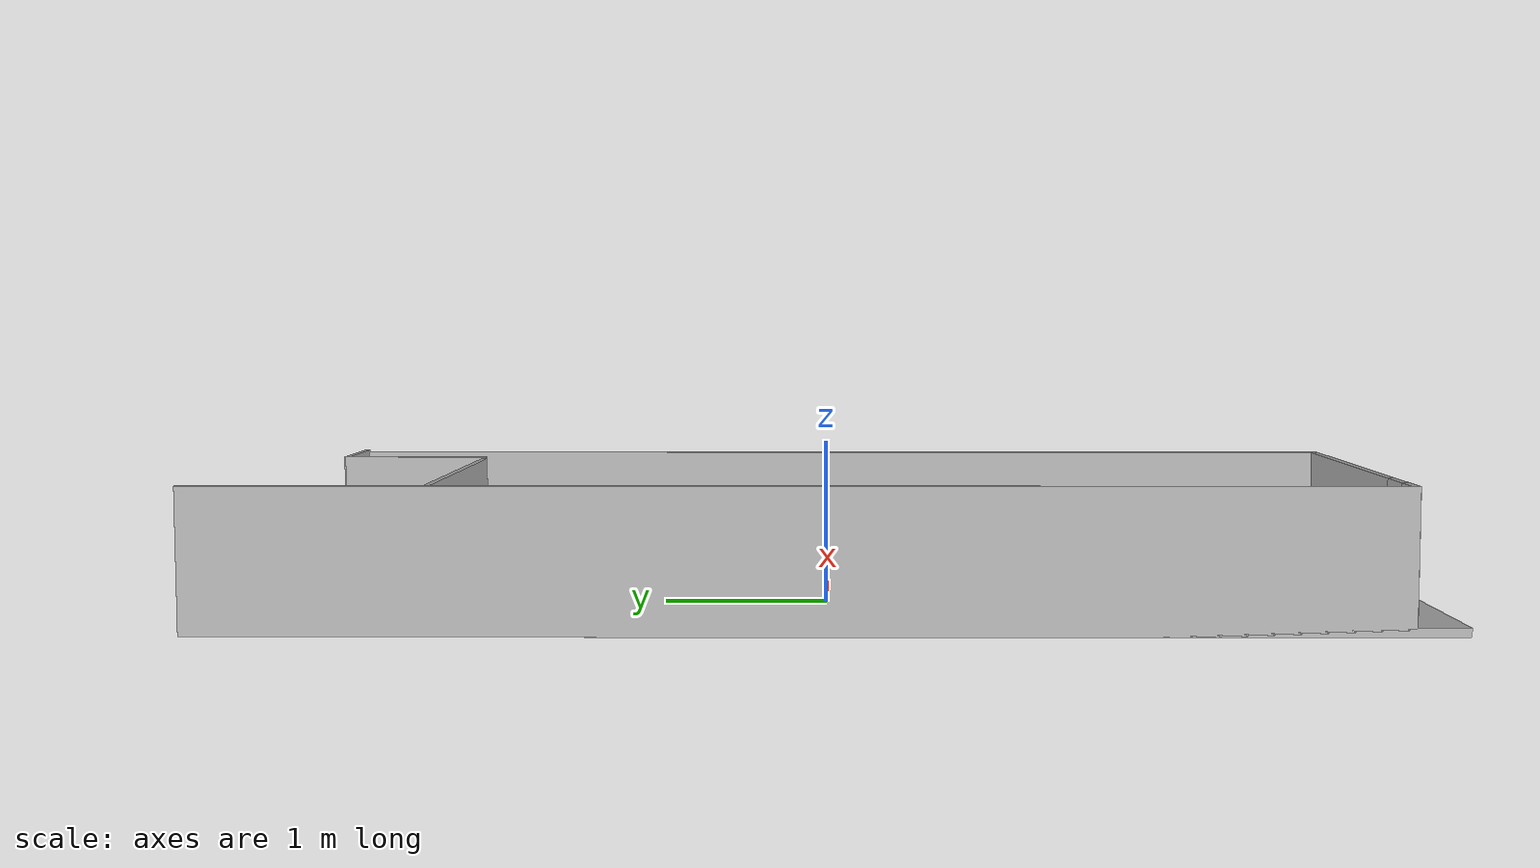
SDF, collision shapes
<?xml version="1.0" ?>
<sdf version="1.8">
  <model name="cafe">
    <static>true</static>
    <link name="link">

      <collision name="main_floor">
        <pose>-0.12 -0.225 0.02844 0 0 0</pose>
        <geometry>
          <box><size>2.814 6.789 0.057</size></box>
        </geometry>
      </collision>

      <collision name="wall_1">
        <pose>-1.509 0.159 0.4245 0 0 0</pose>
        <geometry>
          <box><size>0.036 6.948 0.849</size></box>
        </geometry>
      </collision>

      <collision name="wall_2">
        <pose>1.272 -0.093 0.4245 0 0 0</pose>
        <geometry>
          <box><size>0.036 6.444 0.849</size></box>
        </geometry>
      </collision>

      <collision name="wall_3">
        <pose>-0.444 2.229 0.4245 0 0 0</pose>
        <geometry>
          <box><size>2.16 0.036 0.849</size></box>
        </geometry>
      </collision>

      <collision name="wall_4">
        <pose>0.627 2.67 0.4305 0 0 0</pose>
        <geometry>
          <box><size>0.036 0.915 0.861</size></box>
        </geometry>
      </collision>

      <collision name="wall_5">
        <pose>0.9465 3.12 0.4305 0 0 0</pose>
        <geometry>
          <box><size>0.639 0.036 0.861</size></box>
        </geometry>
      </collision>

      <collision name="wall_6">
        <pose>0.1845 -3.294 0.4245 0 0 0</pose>
        <geometry>
          <box><size>2.208 0.045 0.849</size></box>
        </geometry>
      </collision>

      <collision name="wall_7">
        <pose>-1.386 -3.294 0.4245 0 0 0</pose>
        <geometry>
          <box><size>0.279 0.045 0.849</size></box>
        </geometry>
      </collision>

      <collision name="wall_8">
        <pose>-1.083 -3.294 0.807 0 0 0</pose>
        <geometry>
          <box><size>0.327 0.045 0.084</size></box>
        </geometry>
      </collision>

      <collision name="coke">
        <pose>-1.3155 0.078 0.285 0 0 0</pose>
        <geometry>
          <box><size>0.309 0.309 0.456</size></box>
        </geometry>
      </collision>

      <visual name="visual">
        <geometry>
          <mesh>
            <uri>model://cafe/meshes/cafe.dae</uri>
            <scale>0.3 0.3 0.3</scale>
          </mesh>
        </geometry>
      </visual>

    </link>
  </model>
</sdf>
